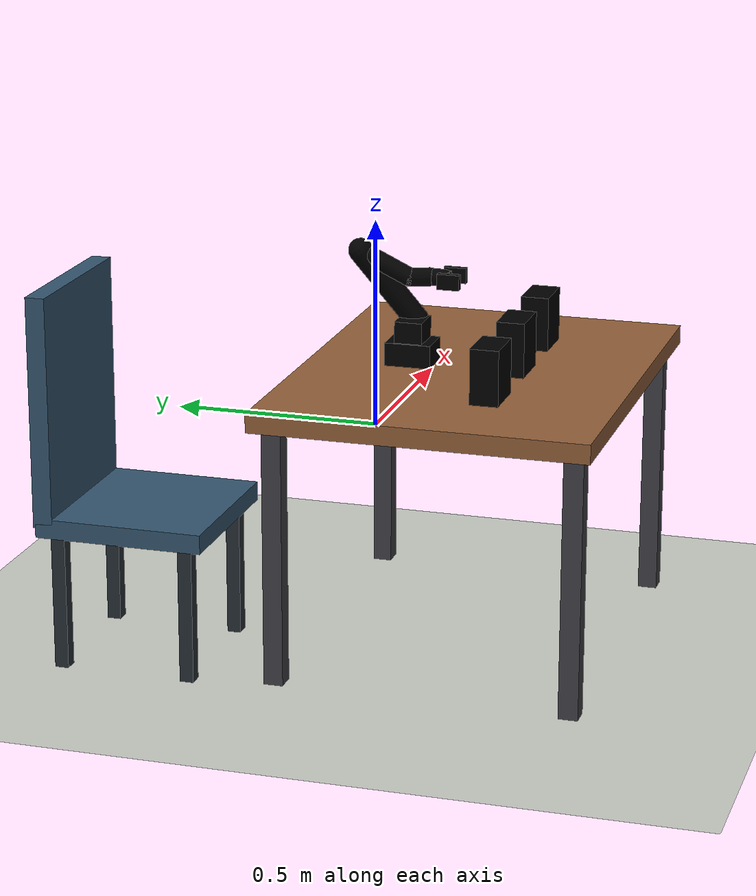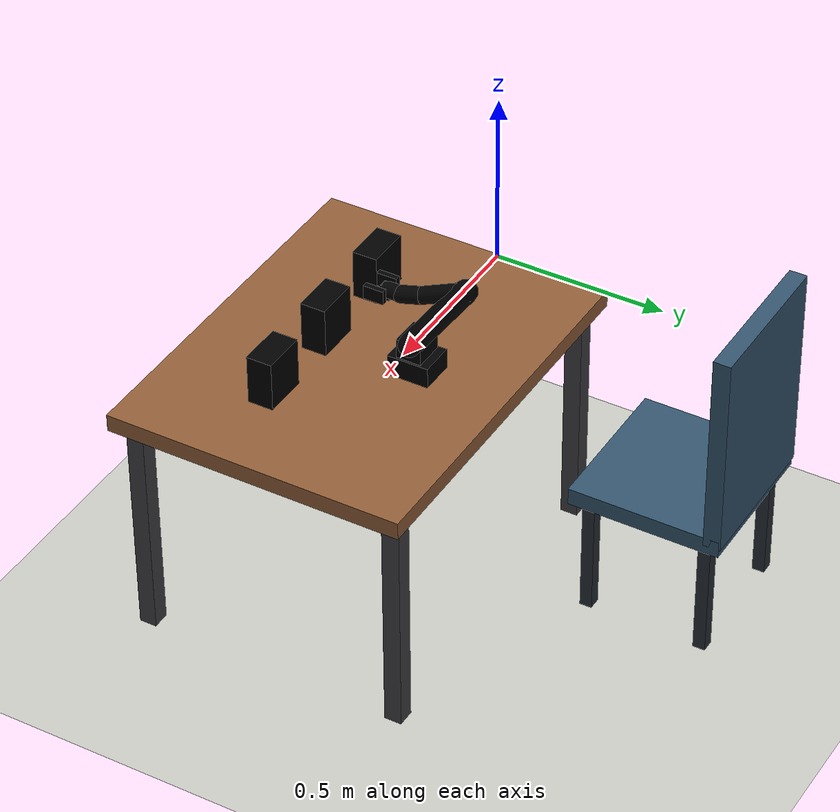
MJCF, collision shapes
<?xml version='1.0' encoding='utf-8'?>
<mujoco model="NexArm-HOPE">
  <include file="robot.xml" />
  <asset>
    <texture name="hope_Butter_tex" type="2d" file="../hope-dataset/meshes/eval/Butter.png" />
    <material name="hope_Butter_mat" texture="hope_Butter_tex" />
    <mesh name="hope_Butter_mesh" file="../../hope-dataset/meshes/eval/Butter.obj" scale="0.01 0.01 0.01" />
    <texture name="hope_ChocolatePudding_tex" type="2d" file="../hope-dataset/meshes/eval/ChocolatePudding.png" />
    <material name="hope_ChocolatePudding_mat" texture="hope_ChocolatePudding_tex" />
    <mesh name="hope_ChocolatePudding_mesh" file="../../hope-dataset/meshes/eval/ChocolatePudding.obj" scale="0.01 0.01 0.01" />
    <texture name="hope_CreamCheese_tex" type="2d" file="../hope-dataset/meshes/eval/CreamCheese.png" />
    <material name="hope_CreamCheese_mat" texture="hope_CreamCheese_tex" />
    <mesh name="hope_CreamCheese_mesh" file="../../hope-dataset/meshes/eval/CreamCheese.obj" scale="0.01 0.01 0.01" />
    <texture name="hope_Popcorn_tex" type="2d" file="../hope-dataset/meshes/eval/Popcorn.png" />
    <material name="hope_Popcorn_mat" texture="hope_Popcorn_tex" />
    <mesh name="hope_Popcorn_mesh" file="../../hope-dataset/meshes/eval/Popcorn.obj" scale="0.01 0.01 0.01" />
    <texture name="hope_Raisins_tex" type="2d" file="../hope-dataset/meshes/eval/Raisins.png" />
    <material name="hope_Raisins_mat" texture="hope_Raisins_tex" />
    <mesh name="hope_Raisins_mesh" file="../../hope-dataset/meshes/eval/Raisins.obj" scale="0.01 0.01 0.01" />
    <texture name="hope_Milk_tex" type="2d" file="../hope-dataset/meshes/eval/Milk.png" />
    <material name="hope_Milk_mat" texture="hope_Milk_tex" />
    <mesh name="hope_Milk_mesh" file="../../hope-dataset/meshes/eval/Milk.obj" scale="0.01 0.01 0.01" />
    <texture name="hope_OrangeJuice_tex" type="2d" file="../hope-dataset/meshes/eval/OrangeJuice.png" />
    <material name="hope_OrangeJuice_mat" texture="hope_OrangeJuice_tex" />
    <mesh name="hope_OrangeJuice_mesh" file="../../hope-dataset/meshes/eval/OrangeJuice.obj" scale="0.01 0.01 0.01" />
    <texture name="hope_Tuna_tex" type="2d" file="../hope-dataset/meshes/eval/Tuna.png" />
    <material name="hope_Tuna_mat" texture="hope_Tuna_tex" />
    <mesh name="hope_Tuna_mesh" file="../../hope-dataset/meshes/eval/Tuna.obj" scale="0.01 0.01 0.01" />
  </asset>
  <visual>
    <headlight ambient="0.3 0.3 0.3" diffuse="0.4 0.4 0.4" specular="0.15 0.15 0.15" />
  </visual>
  <worldbody>
    <geom name="floor" type="plane" pos="0 0 -0.75" size="2 2 0.1" rgba="0.78 0.79 0.76 1" />
    <geom name="table_top" type="box" pos="0.54 -0.10 -0.025" size="0.55 0.43 0.025" rgba="0.57 0.37 0.22 1" friction="1 0.01 0.001" />
    <geom type="box" pos="0.06 -0.48 -0.375" size="0.025 0.025 0.35" rgba="0.25 0.25 0.27 1" />
    <geom type="box" pos="0.06 0.28 -0.375" size="0.025 0.025 0.35" rgba="0.25 0.25 0.27 1" />
    <geom type="box" pos="1.02 -0.48 -0.375" size="0.025 0.025 0.35" rgba="0.25 0.25 0.27 1" />
    <geom type="box" pos="1.02 0.28 -0.375" size="0.025 0.025 0.35" rgba="0.25 0.25 0.27 1" />
    <geom name="chair_seat" type="box" pos="0.20 0.67 -0.35" size="0.22 0.22 0.025" rgba="0.2 0.33 0.43 1" />
    <geom name="chair_back" type="box" pos="0.20 0.87 -0.05" size="0.22 0.025 0.30" rgba="0.2 0.33 0.43 1" />
    <geom type="box" pos="0.02 0.5 -0.55" size="0.018 0.018 0.18" rgba="0.15 0.18 0.21 1" />
    <geom type="box" pos="0.02 0.84 -0.55" size="0.018 0.018 0.18" rgba="0.15 0.18 0.21 1" />
    <geom type="box" pos="0.38 0.5 -0.55" size="0.018 0.018 0.18" rgba="0.15 0.18 0.21 1" />
    <geom type="box" pos="0.38 0.84 -0.55" size="0.018 0.018 0.18" rgba="0.15 0.18 0.21 1" />
    <camera name="front" pos="0.54 -0.78 0.55" xyaxes="1 0 0 0 0.42 0.907" fovy="45" />
    <light pos="0.2 -0.5 1.4" dir="0.2 0.3 -1" diffuse="0.8 0.8 0.8" />
    <light pos="0.9 0.2 1.1" dir="-0.2 -0.2 -1" diffuse="0.35 0.35 0.35" />
    <body name="cube" pos="0.54 -0.21 0.04641319000000001">
      <freejoint name="cube_joint" />
      <geom name="hope_visual_0_Butter" type="mesh" mesh="hope_Butter_mesh" material="hope_Butter_mat" quat="0.70710678 0.70710678 0 0" contype="0" conaffinity="0" group="2" mass="0" rgba="1 1 1 1" />
      <geom name="hope_visual_0_ChocolatePudding" type="mesh" mesh="hope_ChocolatePudding_mesh" material="hope_ChocolatePudding_mat" quat="0.70710678 0.70710678 0 0" contype="0" conaffinity="0" group="2" mass="0" rgba="1 1 1 0" />
      <geom name="hope_visual_0_CreamCheese" type="mesh" mesh="hope_CreamCheese_mesh" material="hope_CreamCheese_mat" quat="0.70710678 0.70710678 0 0" contype="0" conaffinity="0" group="2" mass="0" rgba="1 1 1 0" />
      <geom name="hope_visual_0_Popcorn" type="mesh" mesh="hope_Popcorn_mesh" material="hope_Popcorn_mat" quat="0.70710678 0.70710678 0 0" contype="0" conaffinity="0" group="2" mass="0" rgba="1 1 1 0" />
      <geom name="hope_visual_0_Raisins" type="mesh" mesh="hope_Raisins_mesh" material="hope_Raisins_mat" quat="0.70710678 0.70710678 0 0" contype="0" conaffinity="0" group="2" mass="0" rgba="1 1 1 0" />
      <geom name="hope_visual_0_Milk" type="mesh" mesh="hope_Milk_mesh" material="hope_Milk_mat" quat="0.70710678 0.70710678 0 0" contype="0" conaffinity="0" group="2" mass="0" rgba="1 1 1 0" />
      <geom name="hope_visual_0_OrangeJuice" type="mesh" mesh="hope_OrangeJuice_mesh" material="hope_OrangeJuice_mat" quat="0.70710678 0.70710678 0 0" contype="0" conaffinity="0" group="2" mass="0" rgba="1 1 1 0" />
      <geom name="hope_visual_0_Tuna" type="mesh" mesh="hope_Tuna_mesh" material="hope_Tuna_mat" quat="0.70710678 0.70710678 0 0" contype="0" conaffinity="0" group="2" mass="0" rgba="1 1 1 0" />
      <geom name="hope_collision_0" type="box" size="0.06324596 0.036612685000000006 0.09622282500000001" mass="0.08" rgba="0 0 0 0" friction="1.2 0.01 0.001" />
    </body>
    <body name="hope_object_1" pos="0.28 -0.21 0.04641319000000001">
      <freejoint name="hope_joint_1" />
      <geom name="hope_visual_1_Butter" type="mesh" mesh="hope_Butter_mesh" material="hope_Butter_mat" quat="0.70710678 0.70710678 0 0" contype="0" conaffinity="0" group="2" mass="0" rgba="1 1 1 1" />
      <geom name="hope_visual_1_ChocolatePudding" type="mesh" mesh="hope_ChocolatePudding_mesh" material="hope_ChocolatePudding_mat" quat="0.70710678 0.70710678 0 0" contype="0" conaffinity="0" group="2" mass="0" rgba="1 1 1 0" />
      <geom name="hope_visual_1_CreamCheese" type="mesh" mesh="hope_CreamCheese_mesh" material="hope_CreamCheese_mat" quat="0.70710678 0.70710678 0 0" contype="0" conaffinity="0" group="2" mass="0" rgba="1 1 1 0" />
      <geom name="hope_visual_1_Popcorn" type="mesh" mesh="hope_Popcorn_mesh" material="hope_Popcorn_mat" quat="0.70710678 0.70710678 0 0" contype="0" conaffinity="0" group="2" mass="0" rgba="1 1 1 0" />
      <geom name="hope_visual_1_Raisins" type="mesh" mesh="hope_Raisins_mesh" material="hope_Raisins_mat" quat="0.70710678 0.70710678 0 0" contype="0" conaffinity="0" group="2" mass="0" rgba="1 1 1 0" />
      <geom name="hope_visual_1_Milk" type="mesh" mesh="hope_Milk_mesh" material="hope_Milk_mat" quat="0.70710678 0.70710678 0 0" contype="0" conaffinity="0" group="2" mass="0" rgba="1 1 1 0" />
      <geom name="hope_visual_1_OrangeJuice" type="mesh" mesh="hope_OrangeJuice_mesh" material="hope_OrangeJuice_mat" quat="0.70710678 0.70710678 0 0" contype="0" conaffinity="0" group="2" mass="0" rgba="1 1 1 0" />
      <geom name="hope_visual_1_Tuna" type="mesh" mesh="hope_Tuna_mesh" material="hope_Tuna_mat" quat="0.70710678 0.70710678 0 0" contype="0" conaffinity="0" group="2" mass="0" rgba="1 1 1 0" />
      <geom name="hope_collision_1" type="box" size="0.06324596 0.036612685000000006 0.09622282500000001" mass="0.08" rgba="0 0 0 0" friction="1.2 0.01 0.001" />
    </body>
    <body name="hope_object_2" pos="0.8 -0.21 0.04641319000000001">
      <freejoint name="hope_joint_2" />
      <geom name="hope_visual_2_Butter" type="mesh" mesh="hope_Butter_mesh" material="hope_Butter_mat" quat="0.70710678 0.70710678 0 0" contype="0" conaffinity="0" group="2" mass="0" rgba="1 1 1 1" />
      <geom name="hope_visual_2_ChocolatePudding" type="mesh" mesh="hope_ChocolatePudding_mesh" material="hope_ChocolatePudding_mat" quat="0.70710678 0.70710678 0 0" contype="0" conaffinity="0" group="2" mass="0" rgba="1 1 1 0" />
      <geom name="hope_visual_2_CreamCheese" type="mesh" mesh="hope_CreamCheese_mesh" material="hope_CreamCheese_mat" quat="0.70710678 0.70710678 0 0" contype="0" conaffinity="0" group="2" mass="0" rgba="1 1 1 0" />
      <geom name="hope_visual_2_Popcorn" type="mesh" mesh="hope_Popcorn_mesh" material="hope_Popcorn_mat" quat="0.70710678 0.70710678 0 0" contype="0" conaffinity="0" group="2" mass="0" rgba="1 1 1 0" />
      <geom name="hope_visual_2_Raisins" type="mesh" mesh="hope_Raisins_mesh" material="hope_Raisins_mat" quat="0.70710678 0.70710678 0 0" contype="0" conaffinity="0" group="2" mass="0" rgba="1 1 1 0" />
      <geom name="hope_visual_2_Milk" type="mesh" mesh="hope_Milk_mesh" material="hope_Milk_mat" quat="0.70710678 0.70710678 0 0" contype="0" conaffinity="0" group="2" mass="0" rgba="1 1 1 0" />
      <geom name="hope_visual_2_OrangeJuice" type="mesh" mesh="hope_OrangeJuice_mesh" material="hope_OrangeJuice_mat" quat="0.70710678 0.70710678 0 0" contype="0" conaffinity="0" group="2" mass="0" rgba="1 1 1 0" />
      <geom name="hope_visual_2_Tuna" type="mesh" mesh="hope_Tuna_mesh" material="hope_Tuna_mat" quat="0.70710678 0.70710678 0 0" contype="0" conaffinity="0" group="2" mass="0" rgba="1 1 1 0" />
      <geom name="hope_collision_2" type="box" size="0.06324596 0.036612685000000006 0.09622282500000001" mass="0.08" rgba="0 0 0 0" friction="1.2 0.01 0.001" />
    </body>
  </worldbody>
</mujoco>

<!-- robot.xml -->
<mujoco model="NexArm-sim">
  <compiler angle="radian" meshdir="meshes" autolimits="true" />
  <option timestep="0.002" integrator="implicitfast" gravity="0 0 -9.81" />
  <default>
    <default class="arm_joint">
      <joint damping="0.2" frictionloss="0.1" armature="0.005" />
    </default>
    <!-- [MINIMAL SYSID END] -->
    <default class="arm_actuator">
      <position kp="100.0" kv="2.0" />
    </default>
    <default class="visual">
      <geom type="mesh" contype="0" conaffinity="0" group="2" />
    </default>
    <default class="collision">
      <geom contype="1" conaffinity="3" group="3" rgba="0 0 0 0" friction="1.1 0.01 0.001" />
    </default>
  </default>
  <asset>
    <mesh name="base_link" file="base_link.stl" scale="0.001 0.001 0.001" />
    <mesh name="link_1" file="link_1.stl" scale="0.001 0.001 0.001" />
    <mesh name="link_2" file="link_2.stl" scale="0.001 0.001 0.001" />
    <mesh name="link_3" file="link_3.stl" scale="0.001 0.001 0.001" />
    <mesh name="link_4" file="link_4.stl" scale="0.001 0.001 0.001" />
    <mesh name="link_5" file="link_5.stl" scale="0.001 0.001 0.001" />
    <mesh name="link_6_gripper_base" file="link_6_gripper_base.stl" scale="0.001 0.001 0.001" />
    <mesh name="link_6_pinion_gear" file="link_6_pinion_gear.stl" scale="0.001 0.001 0.001" />
    <mesh name="link_6_left_jaw" file="link_6_left_jaw.stl" scale="0.001 0.001 0.001" />
    <mesh name="link_6_right_jaw" file="link_6_right_jaw.stl" scale="0.001 0.001 0.001" />
    <mesh name="cam_mount" file="cam_mount.stl" scale="0.001 0.001 0.001" />
  </asset>
  <worldbody>
    <body name="base_link" pos="0 0 0" quat="1 0 0 0">
      <geom name="base_link_visual" type="mesh" mesh="base_link" class="visual" />
      <geom name="base_link_collision_0" class="collision" type="box" pos="0.53937 0.06397 0.030" size="0.050 0.060 0.030" />
      <inertial mass="0.786700972741" pos="0.539380271544 0.0638369908334 0.0185753932111" fullinertia="0.00139802033416 0.00144056236845 0.0018724205137 -4.47649731558e-07 4.8308012353e-09 -1.18756099678e-05" />
      <body name="link_1" pos="0 0 0" quat="1 0 0 0">
        <joint name="joint_1_base_to_link_1" class="arm_joint" pos="0.539369022999 0.0639727628473 0.049" type="hinge" axis="0 0 -1" limited="true" range="-2.35619449019 2.35619449019" />
        <geom name="link_1_visual" type="mesh" mesh="link_1" class="visual" />
        <geom name="link_1_collision_0" class="collision" type="box" pos="0.53937 0.06397 0.076" size="0.044 0.036 0.040" />
        <inertial mass="0.729809704164" pos="0.539368978002 0.0635116057815 0.071484812844" fullinertia="0.00051963807044 0.000637210660821 0.000641128073206 -1.55037780909e-06 -1.34409444286e-09 -5.03362157091e-06" />
        <body name="link_2" pos="0 0 0" quat="1 0 0 0">
          <joint name="joint_2_link_1_to_link_2" class="arm_joint" pos="0.574469022999 0.0639727628408 0.106445070665" type="hinge" axis="-1 0 0" limited="true" range="-2.09439510239 2.09439510239" />
          <geom name="link_2_visual" type="mesh" mesh="link_2" class="visual" />
          <geom name="link_2_collision_0" class="collision" type="capsule" fromto="0.57447 0.06397 0.10645 0.51944 0.19693 0.29168" size="0.032" />
          <inertial mass="0.499489573358" pos="0.540189023978 0.144420872296 0.188150680363" fullinertia="0.00223280503893 0.00128349391446 0.0011840260217 -6.38518145024e-12 -7.23148332327e-12 -0.00107951664549" />
          <body name="link_3" pos="0 0 0" quat="1 0 0 0">
            <joint name="joint_3_link_2_to_link_3" class="arm_joint" pos="0.519439024469 0.196934090904 0.291683736154" type="hinge" axis="-1 -5.02429586779e-14 2.89985268759e-27" limited="true" range="-2.35619449019 2.35619449019" />
            <geom name="link_3_visual" type="mesh" mesh="link_3" class="visual" />
            <geom name="link_3_collision_0" class="collision" type="capsule" fromto="0.51944 0.19693 0.29168 0.51912 0.06552 0.23041" size="0.024" />
            <inertial mass="0.502797979401" pos="0.538186644887 0.13328554092 0.262084919136" fullinertia="0.00148648515676 0.000325281319953 0.00124573640081 -1.71226057479e-06 -6.54549700107e-07 -0.000548157407294" />
            <body name="link_4" pos="0 0 0" quat="1 0 0 0">
              <joint name="joint_4_link_3_to_link_4" class="arm_joint" pos="0.519118832515 0.0655199672431 0.230406053572" type="hinge" axis="1 0 0" limited="true" range="-1.74532925199 1.74532925199" />
              <geom name="link_4_visual" type="mesh" mesh="link_4" class="visual" />
              <geom name="link_4_collision_0" class="collision" type="capsule" fromto="0.51912 0.06552 0.23041 0.53937 0.01829 0.23042" size="0.024" />
              <inertial mass="0.115068953526" pos="0.539217677946 0.0412813965935 0.225809887954" fullinertia="3.83442340902e-05 3.79383592642e-05 5.09344113524e-05 3.05302531805e-07 -1.84760289414e-08 -2.89291259098e-06" />
              <body name="link_5" pos="0 0 0" quat="1 0 0 0">
                <joint name="joint_5_link_4_to_link_5" class="arm_joint" pos="0.539368637629 0.0182856141095 0.23042272303" type="hinge" axis="0 -1 0" limited="true" range="-3.14159265359 3.14159265359" />
                <geom name="link_5_visual" type="mesh" mesh="link_5" class="visual" />
                <geom name="link_5_collision_0" class="collision" type="capsule" fromto="0.53937 0.01829 0.23042 0.53937 -0.02102 0.23060" size="0.022" />
                <inertial mass="0.0877645173099" pos="0.539308600819 0.00213395624175 0.226224940969" fullinertia="1.61873455873e-05 1.81853478741e-05 1.80887992735e-05 1.9977723024e-08 -7.53848706523e-08 -3.82108689215e-07" />
                <body name="link_6_gripper_base" pos="0 0 0" quat="1 0 0 0">
                  <geom name="link_6_gripper_base_visual" type="mesh" mesh="link_6_gripper_base" class="visual" />
                  <geom name="link_6_gripper_base_collision_0" class="collision" type="box" pos="0.53937 -0.0235 0.2255" size="0.010 0.012 0.022" />
                  <site name="grasp_site" pos="0.539369 -0.039412 0.230434" size="0.008" rgba="0 1 0 0" />
                  <site name="gripper_frame" pos="0.539 -0.09 0.230" size="0.005" rgba="0.1 0.8 0.1 0" />
                  <inertial mass="0.0774928302785" pos="0.539368566486 -0.0210206927704 0.230601823149" fullinertia="8.95253759014e-06 9.85333441232e-05 9.25169280579e-05 1.88914933474e-11 5.42428324479e-15 7.9007785621e-08" />
                  <body name="link_6_pinion_gear" pos="0 0 0" quat="1 0 0 0">
                    <joint name="gripper_pinion_joint" pos="0.539368645759 -0.0216536266505 0.230436163963" type="hinge" axis="0 -0.999999998851 -4.79312977157e-05" />
                    <geom name="link_6_pinion_gear_visual" type="mesh" mesh="link_6_pinion_gear" class="visual" />
                    <inertial mass="0.00813153456749" pos="0.539368645877 -0.0196832596798 0.230436258524" fullinertia="1.98908631521e-07 3.71227873183e-07 1.98908631397e-07 2.68340905052e-17 -2.79953837889e-16 8.25952531924e-12" />
                  </body>
                  <body name="link_6_left_jaw" pos="0 0 0" quat="1 0 0 0">
                    <joint name="left_jaw_slide_joint" pos="0.539368648301 -0.0279461316442 0.230435863088" type="slide" axis="1 0 0" limited="true" range="0 0.0255" />
                    <geom name="link_6_left_jaw_visual" type="mesh" mesh="link_6_left_jaw" class="visual" />
                    <geom name="link_6_left_jaw_collision_0" class="collision" type="box" pos="0.50559 -0.03991 0.22931" size="0.008 0.029 0.020" friction="2.2 0.01 0.001" />
                    <inertial mass="0.111422606046" pos="0.504003187095 -0.0394122365348 0.229771944907" fullinertia="2.28042352486e-05 1.43750650678e-05 2.25552586022e-05 1.93422836022e-06 7.00590085088e-07 1.37928154779e-06" />
                  </body>
                  <body name="link_6_right_jaw" pos="0 0 0" quat="1 0 0 0">
                    <joint name="right_jaw_slide_joint" pos="0.539368644619 -0.0279461316442 0.230435863088" type="slide" axis="1 0 0" limited="true" range="-0.0255 0" />
                    <geom name="link_6_right_jaw_visual" type="mesh" mesh="link_6_right_jaw" class="visual" />
                    <geom name="link_6_right_jaw_collision_0" class="collision" type="box" pos="0.57314 -0.03991 0.23155" size="0.008 0.029 0.020" friction="2.2 0.01 0.001" />
                    <inertial mass="0.111422606059" pos="0.574734109829 -0.0394122993228 0.231095115243" fullinertia="2.28047609263e-05 1.43758557067e-05 2.25549938879e-05 -1.93429494168e-06 7.01727577012e-07 -1.37562632826e-06" />
                  </body>
                </body>
                <body name="cam_mount" pos="0 0 0" quat="1 0 0 0">
                  <geom name="cam_mount_visual" type="mesh" mesh="cam_mount" class="visual" />
                  <camera name="wrist" mode="fixed" pos="0.539 0.015 0.295" xyaxes="0 -0.485643 0.874157 1 0 0" fovy="70" />
                  <inertial mass="0.128723206864" pos="0.53898118894 0.0126462358897 0.266652488245" fullinertia="1.454636486e-05 6.65139880049e-05 6.72526841822e-05 -1.94818185207e-07 1.76421275768e-08 8.29660447764e-07" />
                </body>
              </body>
            </body>
          </body>
        </body>
      </body>
    </body>
  </worldbody>
  <equality>
    <joint name="gripper_jaws_opposed_1_to_1" joint1="right_jaw_slide_joint" joint2="left_jaw_slide_joint" polycoef="0 -1 0 0 0" solref="0.002 1" solimp="0.99 0.999 0.0005 0.5 2" />
    <joint name="gripper_pinion_to_right_jaw" joint1="gripper_pinion_joint" joint2="right_jaw_slide_joint" polycoef="0 246.399423811 0 0 0" solref="0.002 1" solimp="0.99 0.999 0.0005 0.5 2" />
  </equality>
  <contact>
    <exclude name="exclude_base_link_1" body1="base_link" body2="link_1" />
  </contact>
  <actuator>
    <!-- Physical stall-torque ceilings: HX-65HM on J1, HX-30HM on J2-J4,
         and HX-12H on J5. Derate to measured effective operating limits before
         collecting final sim-to-real data. -->
    <position name="joint_1_base_to_link_1_control" class="arm_actuator" joint="joint_1_base_to_link_1" ctrllimited="true" ctrlrange="-2.35619449019 2.35619449019" forcelimited="true" forcerange="-6.37 6.37" />
    <position name="joint_2_link_1_to_link_2_control" class="arm_actuator" joint="joint_2_link_1_to_link_2" ctrllimited="true" ctrlrange="-2.09439510239 2.09439510239" forcelimited="true" forcerange="-2.94 2.94" />
    <position name="joint_3_link_2_to_link_3_control" class="arm_actuator" joint="joint_3_link_2_to_link_3" ctrllimited="true" ctrlrange="-2.35619449019 2.35619449019" forcelimited="true" forcerange="-2.94 2.94" />
    <position name="joint_4_link_3_to_link_4_control" class="arm_actuator" joint="joint_4_link_3_to_link_4" ctrllimited="true" ctrlrange="-1.74532925199 1.74532925199" forcelimited="true" forcerange="-2.94 2.94" />
    <position name="joint_5_link_4_to_link_5_control" class="arm_actuator" joint="joint_5_link_4_to_link_5" ctrllimited="true" ctrlrange="-3.14159265359 3.14159265359" forcelimited="true" forcerange="-1.18 1.18" />
    <!-- [CALIBRATE YOURSELF / MINIMAL]
         Verify servo-command -> jaw-gap mapping with a few physical measurements.
         kp/kv are effective simulation gains; keep nominal/randomize unless needed. -->
    <position name="gripper_control" joint="right_jaw_slide_joint" ctrllimited="true" ctrlrange="-0.0255 0" kp="200.0" kv="4.0" forcelimited="true" forcerange="-581.5 581.5" />
  </actuator>
</mujoco>
